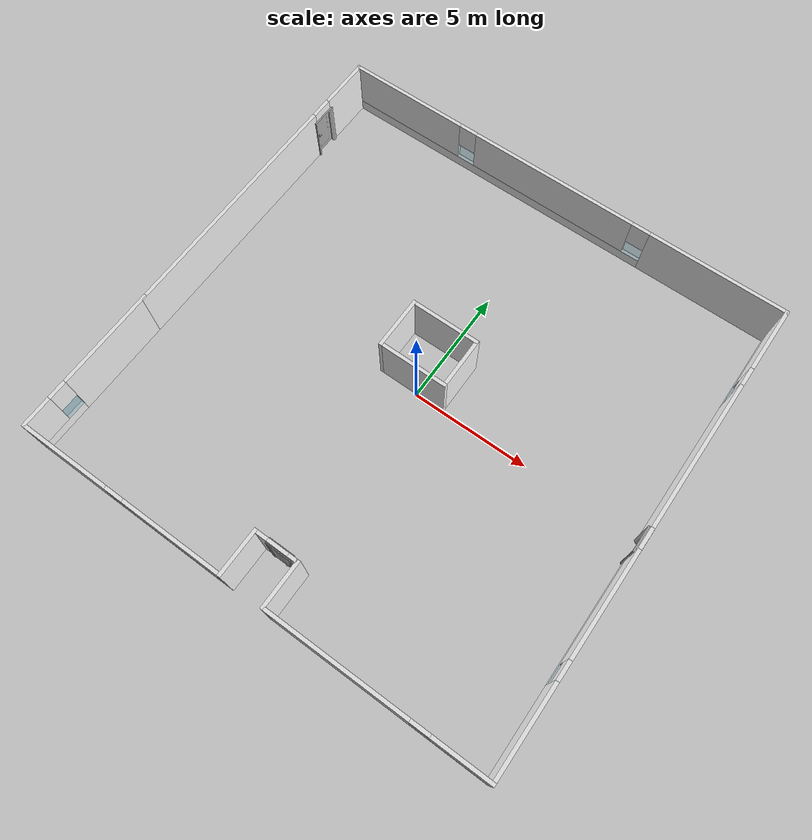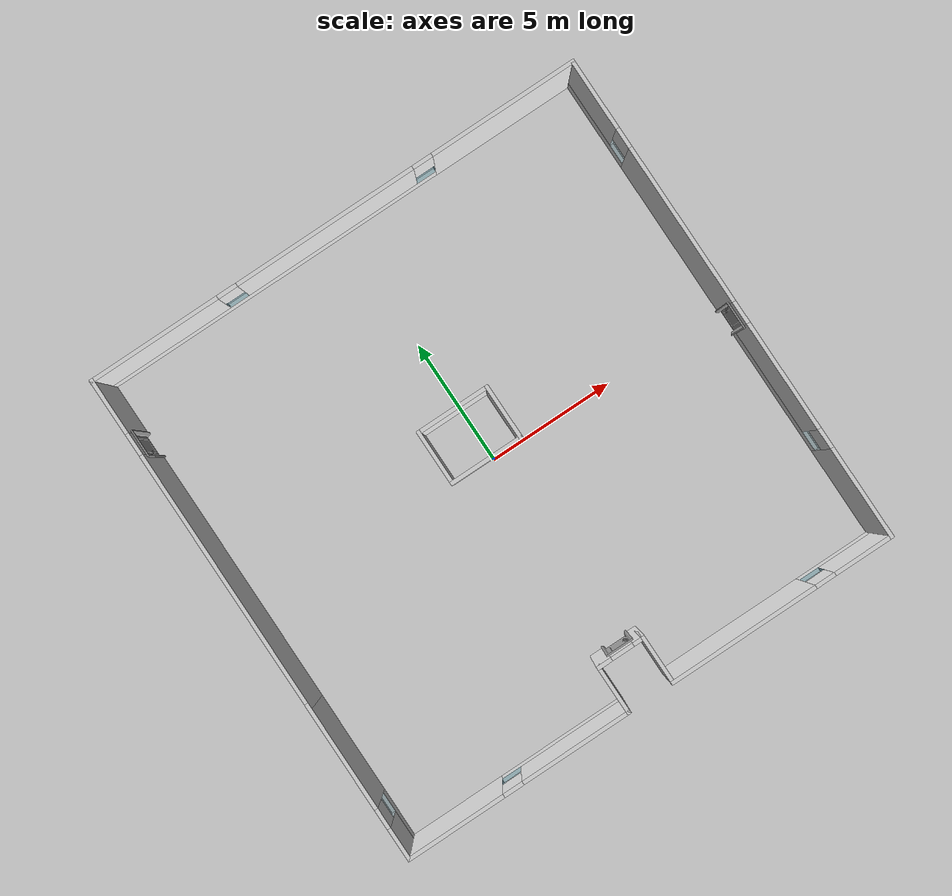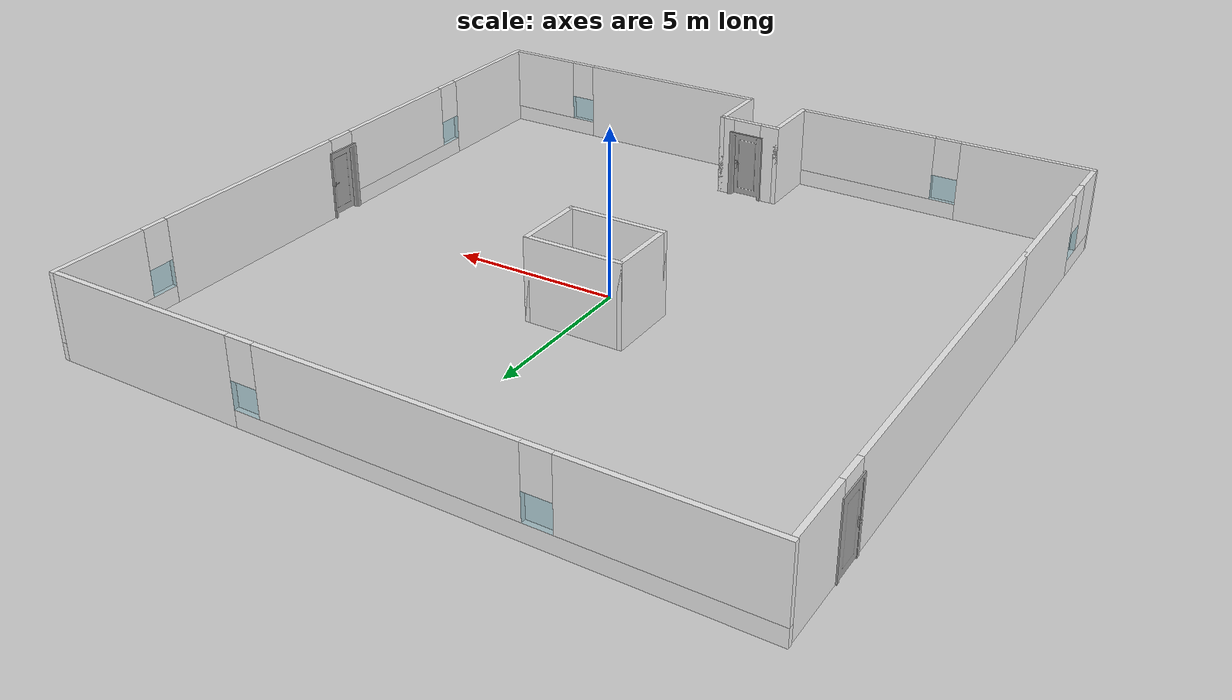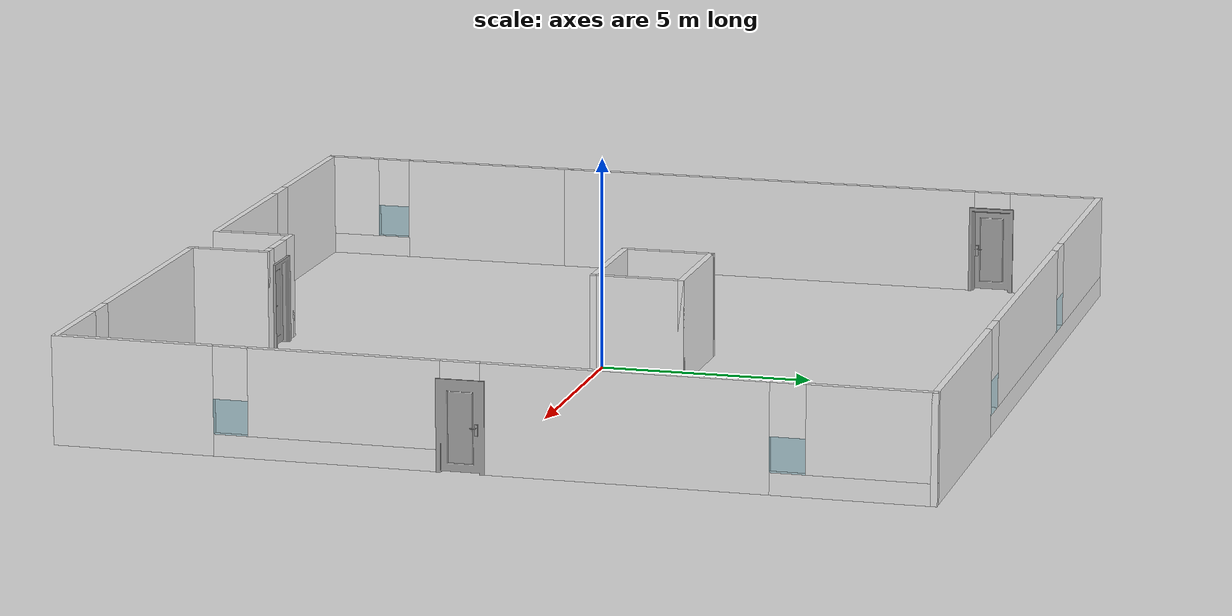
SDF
<?xml version='1.0'?>
<sdf version='1.6'>
  <model name='office_env_w_complete'>
    <pose frame=''>-0.097844 0.056836 0 0 -0 0</pose>
    <link name='Wall_10'>
      <pose frame=''>-5.46873 -9.925 0 0 -0 0</pose>
      <visual name='Wall_10_Visual_0'>
        <pose frame=''>-2.62812 0 1.25 0 -0 0</pose>
        <geometry>
          <box>
            <size>3.99376 0.15 2.5</size>
          </box>
        </geometry>
        	<material>
          <script>
            <uri>model://office_env_w/materials/scripts</uri>
            <uri>model://office_env_w/materials/textures</uri>
            <name>wall_white</name>
          </script>
        </material>
        <meta>
          <layer>0</layer>
        </meta>
      </visual>
      <collision name='Wall_10_Collision_0'>
        <geometry>
          <box>
            <size>3.99376 0.15 2.5</size>
          </box>
        </geometry>
        <pose frame=''>-2.62812 0 1.25 0 -0 0</pose>
      </collision>
      <visual name='Wall_10_Visual_1'>
        <pose frame=''>1.99688 0 0.25 0 -0 0</pose>
        <geometry>
          <box>
            <size>5.25624 0.15 0.5</size>
          </box>
        </geometry>
        	<material>
          <script>
            <uri>model://office_env_w/materials/scripts</uri>
            <uri>model://office_env_w/materials/textures</uri>
            <name>wall_white</name>
          </script>
        </material>
        <meta>
          <layer>0</layer>
        </meta>
      </visual>
      <collision name='Wall_10_Collision_1'>
        <geometry>
          <box>
            <size>5.25624 0.15 0.5</size>
          </box>
        </geometry>
        <pose frame=''>1.99688 0 0.25 0 -0 0</pose>
      </collision>
      <visual name='Wall_10_Visual_2'>
        <pose frame=''>2.39688 0 1.5 0 -0 0</pose>
        <geometry>
          <box>
            <size>4.45624 0.15 2</size>
          </box>
        </geometry>
            	<material>
          <script>
            <uri>model://office_env_w/materials/scripts</uri>
            <uri>model://office_env_w/materials/textures</uri>
            <name>wall_white</name>
          </script>
        </material>
        <meta>
          <layer>0</layer>
        </meta>
      </visual>
      <collision name='Wall_10_Collision_2'>
        <geometry>
          <box>
            <size>4.45624 0.15 2</size>
          </box>
        </geometry>
        <pose frame=''>2.39688 0 1.5 0 -0 0</pose>
      </collision>
      <visual name='Wall_10_Visual_3'>
        <pose frame=''>-0.231239 0 1.9 0 -0 0</pose>
        <geometry>
          <box>
            <size>0.8 0.15 1.2</size>
          </box>
        </geometry>
        	<material>
          <script>
            <uri>model://office_env_w/materials/scripts</uri>
            <uri>model://office_env_w/materials/textures</uri>
            <name>wall_white</name>
          </script>
        </material>
        <meta>
          <layer>0</layer>
        </meta>
      </visual>
      <collision name='Wall_10_Collision_3'>
        <geometry>
          <box>
            <size>0.8 0.15 1.2</size>
          </box>
        </geometry>
        <pose frame=''>-0.231239 0 1.9 0 -0 0</pose>
      </collision>
    </link>

   <include>
	<pose frame=''>-5.699969 -9.925 0 0 0 0</pose>
	<uri>model://window</uri>
   </include>

    <link name='Wall_11'>
      <collision name='Wall_11_Collision'>
        <geometry>
          <box>
            <size>2 0.15 2.5</size>
          </box>
        </geometry>
        <pose frame=''>0 0 1.25 0 -0 0</pose>
      </collision>
      <visual name='Wall_11_Visual'>
        <pose frame=''>0 0 1.25 0 -0 0</pose>
        <geometry>
          <box>
            <size>2 0.15 2.5</size>
          </box>
        </geometry>
        	<material>
          <script>
            <uri>model://office_env_w/materials/scripts</uri>
            <uri>model://office_env_w/materials/textures</uri>
            <name>wall_white</name>
          </script>
        </material>
        <meta>
          <layer>0</layer>
        </meta>
      </visual>
      <pose frame=''>-0.918728 -9 0 0 -0 1.5708</pose>
    </link>
    <link name='Wall_12'>
      <pose frame=''>0.006272 -8.075 0 0 -0 0</pose>
      <visual name='Wall_12_Visual_0'>
        <pose frame=''>-0.695653 0 1.25 0 -0 0</pose>
        <geometry>
          <box>
            <size>0.608694 0.15 2.5</size>
          </box>
        </geometry>
        	<material>
          <script>
            <uri>model://office_env_w/materials/scripts</uri>
            <uri>model://office_env_w/materials/textures</uri>
            <name>wall_white</name>
          </script>
        </material>
        <meta>
          <layer>0</layer>
        </meta>
      </visual>
      <collision name='Wall_12_Collision_0'>
        <geometry>
          <box>
            <size>0.608694 0.15 2.5</size>
          </box>
        </geometry>
        <pose frame=''>-0.695653 0 1.25 0 -0 0</pose>
      </collision>
      <visual name='Wall_12_Visual_1'>
        <pose frame=''>0.754347 0 1.25 0 -0 0</pose>
        <geometry>
          <box>
            <size>0.491306 0.15 2.5</size>
          </box>
        </geometry>
        	<material>
          <script>
            <uri>model://office_env_w/materials/scripts</uri>
            <uri>model://office_env_w/materials/textures</uri>
            <name>wall_white</name>
          </script>
        </material>
        <meta>
          <layer>0</layer>
        </meta>
      </visual>
      <collision name='Wall_12_Collision_1'>
        <geometry>
          <box>
            <size>0.491306 0.15 2.5</size>
          </box>
        </geometry>
        <pose frame=''>0.754347 0 1.25 0 -0 0</pose>
      </collision>
      <visual name='Wall_12_Visual_2'>
        <pose frame=''>0.058694 0 2.25 0 -0 0</pose>
        <geometry>
          <box>
            <size>0.9 0.15 0.5</size>
          </box>
        </geometry>
        	<material>
          <script>
            <uri>model://office_env_w/materials/scripts</uri>
            <uri>model://office_env_w/materials/textures</uri>
            <name>wall_white</name>
          </script>
        </material>
        <meta>
          <layer>0</layer>
        </meta>
      </visual>
      <collision name='Wall_12_Collision_2'>
        <geometry>
          <box>
            <size>0.9 0.15 0.5</size>
          </box>
        </geometry>
        <pose frame=''>0.058694 0 2.25 0 -0 0</pose>
      </collision>
    </link>

 <include>
<pose frame=''>0.064966 -8.062 0 0 -0 0</pose>
	<uri>model://door_3d</uri>
</include>

    <link name='Wall_15'>
      <collision name='Wall_15_Collision'>
        <geometry>
          <box>
            <size>2 0.15 2.5</size>
          </box>
        </geometry>
        <pose frame=''>0 0 1.25 0 -0 0</pose>
      </collision>
      <visual name='Wall_15_Visual'>
        <pose frame=''>0 0 1.25 0 -0 0</pose>
        <geometry>
          <box>
            <size>2 0.15 2.5</size>
          </box>
        </geometry>
        	<material>
          <script>
            <uri>model://office_env_w/materials/scripts</uri>
            <uri>model://office_env_w/materials/textures</uri>
            <name>wall_white</name>
          </script>
        </material>
        <meta>
          <layer>0</layer>
        </meta>
      </visual>
      <pose frame=''>0.931272 -9 0 0 0 -1.5708</pose>
    </link>
    <link name='Wall_16'>
      <pose frame=''>5.48127 -9.925 0 0 -0 0</pose>
      <visual name='Wall_16_Visual_0'>
        <pose frame=''>-1.61303 0 1.25 0 -0 0</pose>
        <geometry>
          <box>
            <size>6.02393 0.15 2.5</size>
          </box>
        </geometry>
        	<material>
          <script>
            <uri>model://office_env_w/materials/scripts</uri>
            <uri>model://office_env_w/materials/textures</uri>
            <name>wall_white</name>
          </script>
        </material>
        <meta>
          <layer>0</layer>
        </meta>
      </visual>
      <collision name='Wall_16_Collision_0'>
        <geometry>
          <box>
            <size>6.02393 0.15 2.5</size>
          </box>
        </geometry>
        <pose frame=''>-1.61303 0 1.25 0 -0 0</pose>
      </collision>
      <visual name='Wall_16_Visual_1'>
        <pose frame=''>3.01197 0 0.25 0 -0 0</pose>
        <geometry>
          <box>
            <size>3.22607 0.15 0.5</size>
          </box>
        </geometry>
        	<material>
          <script>
            <uri>model://office_env_w/materials/scripts</uri>
            <uri>model://office_env_w/materials/textures</uri>
            <name>wall_white</name>
          </script>
        </material>
        <meta>
          <layer>0</layer>
        </meta>
      </visual>
      <collision name='Wall_16_Collision_1'>
        <geometry>
          <box>
            <size>3.22607 0.15 0.5</size>
          </box>
        </geometry>
        <pose frame=''>3.01197 0 0.25 0 -0 0</pose>
      </collision>
      <visual name='Wall_16_Visual_2'>
        <pose frame=''>3.41197 0 1.5 0 -0 0</pose>
        <geometry>
          <box>
            <size>2.42607 0.15 2</size>
          </box>
        </geometry>
        	<material>
          <script>
            <uri>model://office_env_w/materials/scripts</uri>
            <uri>model://office_env_w/materials/textures</uri>
            <name>wall_white</name>
          </script>
        </material>
        <meta>
          <layer>0</layer>
        </meta>
      </visual>
      <collision name='Wall_16_Collision_2'>
        <geometry>
          <box>
            <size>2.42607 0.15 2</size>
          </box>
        </geometry>
        <pose frame=''>3.41197 0 1.5 0 -0 0</pose>
      </collision>
      <visual name='Wall_16_Visual_3'>
        <pose frame=''>1.79893 0 1.9 0 -0 0</pose>
        <geometry>
          <box>
            <size>0.8 0.15 1.2</size>
          </box>
        </geometry>
        	<material>
          <script>
            <uri>model://office_env_w/materials/scripts</uri>
            <uri>model://office_env_w/materials/textures</uri>
            <name>wall_white</name>
          </script>
        </material>
        <meta>
          <layer>0</layer>
        </meta>
      </visual>
      <collision name='Wall_16_Collision_3'>
        <geometry>
          <box>
            <size>0.8 0.15 1.2</size>
          </box>
        </geometry>
        <pose frame=''>1.79893 0 1.9 0 -0 0</pose>
      </collision>
    </link>

  <include>
	<pose frame=''>7.2802 -9.925 0 0 0 0</pose>
	<uri>model://window</uri>
   </include>

    <link name='Wall_17'>
      <pose frame=''>10.0313 0 0 0 -0 1.5708</pose>
      <visual name='Wall_17_Visual_0'>
        <pose frame=''>-8.12184 0 1.25 0 -0 0</pose>
        <geometry>
          <box>
            <size>3.75631 0.15 2.5</size>
          </box>
        </geometry>
        	<material>
          <script>
            <uri>model://office_env_w/materials/scripts</uri>
            <uri>model://office_env_w/materials/textures</uri>
            <name>wall_white</name>
          </script>
        </material>
        <meta>
          <layer>0</layer>
        </meta>
      </visual>
      <collision name='Wall_17_Collision_0'>
        <geometry>
          <box>
            <size>3.75631 0.15 2.5</size>
          </box>
        </geometry>
        <pose frame=''>-8.12184 0 1.25 0 -0 0</pose>
      </collision>
      <visual name='Wall_17_Visual_1'>
        <pose frame=''>3.09096 0 1.25 0 -0 0</pose>
        <geometry>
          <box>
            <size>6.45362 0.15 2.5</size>
          </box>
        </geometry>
        	<material>
          <script>
            <uri>model://office_env_w/materials/scripts</uri>
            <uri>model://office_env_w/materials/textures</uri>
            <name>wall_white</name>
          </script>
        </material>
        <meta>
          <layer>0</layer>
        </meta>
      </visual>
      <collision name='Wall_17_Collision_1'>
        <geometry>
          <box>
            <size>6.45362 0.15 2.5</size>
          </box>
        </geometry>
        <pose frame=''>3.09096 0 1.25 0 -0 0</pose>
      </collision>
      <visual name='Wall_17_Visual_2'>
        <pose frame=''>-3.63977 0 0.25 0 -0 0</pose>
        <geometry>
          <box>
            <size>5.20784 0.15 0.5</size>
          </box>
        </geometry>
        	<material>
          <script>
            <uri>model://office_env_w/materials/scripts</uri>
            <uri>model://office_env_w/materials/textures</uri>
            <name>wall_white</name>
          </script>
        </material>
        <meta>
          <layer>0</layer>
        </meta>
      </visual>
      <collision name='Wall_17_Collision_2'>
        <geometry>
          <box>
            <size>5.20784 0.15 0.5</size>
          </box>
        </geometry>
        <pose frame=''>-3.63977 0 0.25 0 -0 0</pose>
      </collision>
      <visual name='Wall_17_Visual_3'>
        <pose frame=''>8.15888 0 0.25 0 -0 0</pose>
        <geometry>
          <box>
            <size>3.68223 0.15 0.5</size>
          </box>
        </geometry>
        	<material>
          <script>
            <uri>model://office_env_w/materials/scripts</uri>
            <uri>model://office_env_w/materials/textures</uri>
            <name>wall_white</name>
          </script>
        </material>
        <meta>
          <layer>0</layer>
        </meta>
      </visual>
      <collision name='Wall_17_Collision_3'>
        <geometry>
          <box>
            <size>3.68223 0.15 0.5</size>
          </box>
        </geometry>
        <pose frame=''>8.15888 0 0.25 0 -0 0</pose>
      </collision>
      <visual name='Wall_17_Visual_4'>
        <pose frame=''>-3.23977 0 1.5 0 -0 0</pose>
        <geometry>
          <box>
            <size>4.40784 0.15 2</size>
          </box>
        </geometry>
        	<material>
          <script>
            <uri>model://office_env_w/materials/scripts</uri>
            <uri>model://office_env_w/materials/textures</uri>
            <name>wall_white</name>
          </script>
        </material>
        <meta>
          <layer>0</layer>
        </meta>
      </visual>
      <collision name='Wall_17_Collision_4'>
        <geometry>
          <box>
            <size>4.40784 0.15 2</size>
          </box>
        </geometry>
        <pose frame=''>-3.23977 0 1.5 0 -0 0</pose>
      </collision>
      <visual name='Wall_17_Visual_5'>
        <pose frame=''>-3.23977 0 1.5 0 -0 0</pose>
        <geometry>
          <box>
            <size>4.40784 0.15 2</size>
          </box>
        </geometry>
        	<material>
          <script>
            <uri>model://office_env_w/materials/scripts</uri>
            <uri>model://office_env_w/materials/textures</uri>
            <name>wall_white</name>
          </script>
        </material>
        <meta>
          <layer>0</layer>
        </meta>
      </visual>
      <collision name='Wall_17_Collision_5'>
        <geometry>
          <box>
            <size>4.40784 0.15 2</size>
          </box>
        </geometry>
        <pose frame=''>-3.23977 0 1.5 0 -0 0</pose>
      </collision>
      <visual name='Wall_17_Visual_6'>
        <pose frame=''>8.55889 0 1.5 0 -0 0</pose>
        <geometry>
          <box>
            <size>2.88223 0.15 2</size>
          </box>
        </geometry>
        	<material>
          <script>
            <uri>model://office_env_w/materials/scripts</uri>
            <uri>model://office_env_w/materials/textures</uri>
            <name>wall_white</name>
          </script>
        </material>
        <meta>
          <layer>0</layer>
        </meta>
      </visual>
      <collision name='Wall_17_Collision_6'>
        <geometry>
          <box>
            <size>2.88223 0.15 2</size>
          </box>
        </geometry>
        <pose frame=''>8.55889 0 1.5 0 -0 0</pose>
      </collision>
      <visual name='Wall_17_Visual_7'>
        <pose frame=''>-5.84369 0 1.9 0 -0 0</pose>
        <geometry>
          <box>
            <size>0.8 0.15 1.2</size>
          </box>
        </geometry>
        	<material>
          <script>
            <uri>model://office_env_w/materials/scripts</uri>
            <uri>model://office_env_w/materials/textures</uri>
            <name>wall_white</name>
          </script>
        </material>
        <meta>
          <layer>0</layer>
        </meta>
      </visual>
      <collision name='Wall_17_Collision_7'>
        <geometry>
          <box>
            <size>0.8 0.15 1.2</size>
          </box>
        </geometry>
        <pose frame=''>-5.84369 0 1.9 0 -0 0</pose>
      </collision>
      <visual name='Wall_17_Visual_8'>
        <pose frame=''>6.71777 0 1.9 0 -0 0</pose>
        <geometry>
          <box>
            <size>0.8 0.15 1.2</size>
          </box>
        </geometry>
         	<material>
          <script>
            <uri>model://office_env_w/materials/scripts</uri>
            <uri>model://office_env_w/materials/textures</uri>
            <name>wall_white</name>
          </script>
        </material>
        <meta>
          <layer>0</layer>
        </meta>
      </visual>
      <collision name='Wall_17_Collision_8'>
        <geometry>
          <box>
            <size>0.8 0.15 1.2</size>
          </box>
        </geometry>
        <pose frame=''>6.71777 0 1.9 0 -0 0</pose>
      </collision>
      <visual name='Wall_17_Visual_9'>
        <pose frame=''>-0.585848 0 2.25 0 -0 0</pose>
        <geometry>
          <box>
            <size>0.9 0.15 0.5</size>
          </box>
        </geometry>
        	<material>
          <script>
            <uri>model://office_env_w/materials/scripts</uri>
            <uri>model://office_env_w/materials/textures</uri>
            <name>wall_white</name>
          </script>
        </material>
        <meta>
          <layer>0</layer>
        </meta>
      </visual>
      <collision name='Wall_17_Collision_9'>
        <geometry>
          <box>
            <size>0.9 0.15 0.5</size>
          </box>
        </geometry>
        <pose frame=''>-0.585848 0 2.25 0 -0 0</pose>
      </collision>
      <visual name='Wall_17_Visual_10'>
        <pose frame=''>-0.585848 0 2.25 0 -0 0</pose>
        <geometry>
          <box>
            <size>0.9 0.15 0.5</size>
          </box>
        </geometry>
        	<material>
          <script>
            <uri>model://office_env_w/materials/scripts</uri>
            <uri>model://office_env_w/materials/textures</uri>
            <name>wall_white</name>
          </script>
        </material>
        <meta>
          <layer>0</layer>
        </meta>
      </visual>
      <collision name='Wall_17_Collision_10'>
        <geometry>
          <box>
            <size>0.9 0.15 0.5</size>
          </box>
        </geometry>
        <pose frame=''>-0.585848 0 2.25 0 -0 0</pose>
      </collision>
    </link>

   <include>
	<pose frame=''>10.018000 -0.585848 0 0 -0 1.5708</pose>
	<uri>model://door_3d</uri>
  </include>

 <include>
	<pose frame=''>10.031300 -5.84369 0 0 -0 1.5708</pose>
	<uri>model://window</uri>
  </include>

 <include>
	<pose frame=''>10.031300 6.71777 0 0 -0 1.5708</pose>
	<uri>model://window</uri>
  </include>

    <link name='Wall_19'>
      <pose frame=''>-0 9.925 0 0 -0 3.14159</pose>
      <visual name='Wall_19_Visual_0'>
        <pose frame=''>-7.12533 0 1.25 0 -0 0</pose>
        <geometry>
          <box>
            <size>5.96188 0.15 2.5</size>
          </box>
        </geometry>
        	<material>
          <script>
            <uri>model://office_env_w/materials/scripts</uri>
            <uri>model://office_env_w/materials/textures</uri>
            <name>wall_white</name>
          </script>
        </material>
        <meta>
          <layer>0</layer>
        </meta>
      </visual>
      <collision name='Wall_19_Collision_0'>
        <geometry>
          <box>
            <size>5.96188 0.15 2.5</size>
          </box>
        </geometry>
        <pose frame=''>-7.12533 0 1.25 0 -0 0</pose>
      </collision>
      <visual name='Wall_19_Visual_1'>
        <pose frame=''>2.98094 0 0.25 0 -0 0</pose>
        <geometry>
          <box>
            <size>14.2507 0.15 0.5</size>
          </box>
        </geometry>
        	<material>
          <script>
            <uri>model://office_env_w/materials/scripts</uri>
            <uri>model://office_env_w/materials/textures</uri>
            <name>wall_white</name>
          </script>
        </material>
        <meta>
          <layer>0</layer>
        </meta>
      </visual>
      <collision name='Wall_19_Collision_1'>
        <geometry>
          <box>
            <size>14.2507 0.15 0.5</size>
          </box>
        </geometry>
        <pose frame=''>2.98094 0 0.25 0 -0 0</pose>
      </collision>
      <visual name='Wall_19_Visual_2'>
        <pose frame=''>0.326454 0 1.5 0 -0 0</pose>
        <geometry>
          <box>
            <size>7.34169 0.15 2</size>
          </box>
        </geometry>
        	<material>
          <script>
            <uri>model://office_env_w/materials/scripts</uri>
            <uri>model://office_env_w/materials/textures</uri>
            <name>wall_white</name>
          </script>
        </material>
        <meta>
          <layer>0</layer>
        </meta>
      </visual>
      <collision name='Wall_19_Collision_2'>
        <geometry>
          <box>
            <size>7.34169 0.15 2</size>
          </box>
        </geometry>
        <pose frame=''>0.326454 0 1.5 0 -0 0</pose>
      </collision>
      <visual name='Wall_19_Visual_3'>
        <pose frame=''>7.45179 0 1.5 0 -0 0</pose>
        <geometry>
          <box>
            <size>5.30898 0.15 2</size>
          </box>
        </geometry>
        	<material>
          <script>
            <uri>model://office_env_w/materials/scripts</uri>
            <uri>model://office_env_w/materials/textures</uri>
            <name>wall_white</name>
          </script>
        </material>
        <meta>
          <layer>0</layer>
        </meta>
      </visual>
      <collision name='Wall_19_Collision_3'>
        <geometry>
          <box>
            <size>5.30898 0.15 2</size>
          </box>
        </geometry>
        <pose frame=''>7.45179 0 1.5 0 -0 0</pose>
      </collision>
      <visual name='Wall_19_Visual_4'>
        <pose frame=''>-3.74439 0 1.9 0 -0 0</pose>
        <geometry>
          <box>
            <size>0.8 0.15 1.2</size>
          </box>
        </geometry>
             	<material>
          <script>
            <uri>model://office_env_w/materials/scripts</uri>
            <uri>model://office_env_w/materials/textures</uri>
            <name>wall_white</name>
          </script>
        </material>
        <meta>
          <layer>0</layer>
        </meta>
      </visual>
      <collision name='Wall_19_Collision_4'>
        <geometry>
          <box>
            <size>0.8 0.15 1.2</size>
          </box>
        </geometry>
        <pose frame=''>-3.74439 0 1.9 0 -0 0</pose>
      </collision>
      <visual name='Wall_19_Visual_5'>
        <pose frame=''>4.3973 0 1.9 0 -0 0</pose>
        <geometry>
          <box>
            <size>0.8 0.15 1.2</size>
          </box>
        </geometry>
        	<material>
          <script>
            <uri>model://office_env_w/materials/scripts</uri>
            <uri>model://office_env_w/materials/textures</uri>
            <name>wall_white</name>
          </script>
        </material>
        <meta>
          <layer>0</layer>
        </meta>
      </visual>
      <collision name='Wall_19_Collision_5'>
        <geometry>
          <box>
            <size>0.8 0.15 1.2</size>
          </box>
        </geometry>
        <pose frame=''>4.3973 0 1.9 0 -0 0</pose>
      </collision>
    </link>

 <include>
	<pose frame=''>3.744390 9.925 0 0 0 3.141591</pose>
	<uri>model://window</uri>
  </include>

 <include>
	<pose frame=''>-4.3973 9.925 0 0 0 3.141591</pose>
	<uri>model://window</uri>
  </include>

    <link name='Wall_2'>
      <pose frame=''>-10.0187 -6.75 0 0 0 -1.5708</pose>
      <visual name='Wall_2_Visual_0'>
        <pose frame=''>-1.06854 0 1.25 0 -0 0</pose>
        <geometry>
          <box>
            <size>4.36293 0.15 2.5</size>
          </box>
        </geometry>
        	<material>
          <script>
            <uri>model://office_env_w/materials/scripts</uri>
            <uri>model://office_env_w/materials/textures</uri>
            <name>wall_white</name>
          </script>
        </material>
        <meta>
          <layer>0</layer>
        </meta>
      </visual>
      <collision name='Wall_2_Collision_0'>
        <geometry>
          <box>
            <size>4.36293 0.15 2.5</size>
          </box>
        </geometry>
        <pose frame=''>-1.06854 0 1.25 0 -0 0</pose>
      </collision>
      <visual name='Wall_2_Visual_1'>
        <pose frame=''>2.18147 0 0.25 0 -0 0</pose>
        <geometry>
          <box>
            <size>2.13707 0.15 0.5</size>
          </box>
        </geometry>
        	<material>
          <script>
            <uri>model://office_env_w/materials/scripts</uri>
            <uri>model://office_env_w/materials/textures</uri>
            <name>wall_white</name>
          </script>
        </material>
        <meta>
          <layer>0</layer>
        </meta>
      </visual>
      <collision name='Wall_2_Collision_1'>
        <geometry>
          <box>
            <size>2.13707 0.15 0.5</size>
          </box>
        </geometry>
        <pose frame=''>2.18147 0 0.25 0 -0 0</pose>
      </collision>
      <visual name='Wall_2_Visual_2'>
        <pose frame=''>2.58147 0 1.5 0 -0 0</pose>
        <geometry>
          <box>
            <size>1.33707 0.15 2</size>
          </box>
        </geometry>
        	<material>
          <script>
            <uri>model://office_env_w/materials/scripts</uri>
            <uri>model://office_env_w/materials/textures</uri>
            <name>wall_white</name>
          </script>
        </material>
        <meta>
          <layer>0</layer>
        </meta>
      </visual>
      <collision name='Wall_2_Collision_2'>
        <geometry>
          <box>
            <size>1.33707 0.15 2</size>
          </box>
        </geometry>
        <pose frame=''>2.58147 0 1.5 0 -0 0</pose>
      </collision>
      <visual name='Wall_2_Visual_3'>
        <pose frame=''>1.51293 0 1.9 0 -0 0</pose>
        <geometry>
          <box>
            <size>0.8 0.15 1.2</size>
          </box>
        </geometry>
        	<material>
          <script>
            <uri>model://office_env_w/materials/scripts</uri>
            <uri>model://office_env_w/materials/textures</uri>
            <name>wall_white</name>
          </script>
        </material>
        <meta>
          <layer>0</layer>
        </meta>
      </visual>
      <collision name='Wall_2_Collision_3'>
        <geometry>
          <box>
            <size>0.8 0.15 1.2</size>
          </box>
        </geometry>
        <pose frame=''>1.51293 0 1.9 0 -0 0</pose>
      </collision>
    </link>

 <include>
	<pose frame=''>-10.0187 -8.26293 0 0 0 -1.57</pose>
	<uri>model://window</uri>
  </include>

    <link name='Wall_20'>
      <pose frame=''>-10.018 3.125 0 0 0 -1.5708</pose>
      <visual name='Wall_20_Visual_0'>
        <pose frame=''>-5.73803 0 1.25 0 -0 0</pose>
        <geometry>
          <box>
            <size>2.27394 0.15 2.5</size>
          </box>
        </geometry>
        	<material>
          <script>
            <uri>model://office_env_w/materials/scripts</uri>
            <uri>model://office_env_w/materials/textures</uri>
            <name>wall_white</name>
          </script>
        </material>
        <meta>
          <layer>0</layer>
        </meta>
      </visual>
      <collision name='Wall_20_Collision_0'>
        <geometry>
          <box>
            <size>2.27394 0.15 2.5</size>
          </box>
        </geometry>
        <pose frame=''>-5.73803 0 1.25 0 -0 0</pose>
      </collision>
      <visual name='Wall_20_Visual_1'>
        <pose frame=''>1.58697 0 1.25 0 -0 0</pose>
        <geometry>
          <box>
            <size>10.5761 0.15 2.5</size>
          </box>
        </geometry>
        	<material>
          <script>
            <uri>model://office_env_w/materials/scripts</uri>
            <uri>model://office_env_w/materials/textures</uri>
            <name>wall_white</name>
          </script>
        </material>
        <meta>
          <layer>0</layer>
        </meta>
      </visual>
      <collision name='Wall_20_Collision_1'>
        <geometry>
          <box>
            <size>10.5761 0.15 2.5</size>
          </box>
        </geometry>
        <pose frame=''>1.58697 0 1.25 0 -0 0</pose>
      </collision>
      <visual name='Wall_20_Visual_2'>
        <pose frame=''>-4.15106 0 2.25 0 -0 0</pose>
        <geometry>
          <box>
            <size>0.9 0.15 0.5</size>
          </box>
        </geometry>
        	<material>
          <script>
            <uri>model://office_env_w/materials/scripts</uri>
            <uri>model://office_env_w/materials/textures</uri>
            <name>wall_white</name>
          </script>
        </material>
        <meta>
          <layer>0</layer>
        </meta>
      </visual>
      <collision name='Wall_20_Collision_2'>
        <geometry>
          <box>
            <size>0.9 0.15 0.5</size>
          </box>
        </geometry>
        <pose frame=''>-4.15106 0 2.25 0 -0 0</pose>
      </collision>
    </link>

   <include>
	<pose frame=''>-10.00500 7.27606 0 0 -0 -1.5708</pose>
	<uri>model://door_3d</uri>
  </include>

    <link name='Wall_22'>
      <collision name='Wall_22_Collision'>
        <geometry>
          <box>
            <size>3 0.15 2.5</size>
          </box>
        </geometry>
        <pose frame=''>0 0 1.25 0 -0 0</pose>
      </collision>
      <visual name='Wall_22_Visual'>
        <pose frame=''>0 0 1.25 0 -0 0</pose>
        <geometry>
          <box>
            <size>3 0.15 2.5</size>
          </box>
        </geometry>
        	<material>
          <script>
            <uri>model://office_env_w/materials/scripts</uri>
            <uri>model://office_env_w/materials/textures</uri>
            <name>wall_white</name>
          </script>
        </material>
        <meta>
          <layer>0</layer>
        </meta>
      </visual>
      <pose frame=''>-0.163956 0.04737 0 0 -0 3.14159</pose>
    </link>
    <link name='Wall_23'>
      <collision name='Wall_23_Collision'>
        <geometry>
          <box>
            <size>2.25 0.15 2.5</size>
          </box>
        </geometry>
        <pose frame=''>0 0 1.25 0 -0 0</pose>
      </collision>
      <visual name='Wall_23_Visual'>
        <pose frame=''>0 0 1.25 0 -0 0</pose>
        <geometry>
          <box>
            <size>2.25 0.15 2.5</size>
          </box>
        </geometry>
        	<material>
          <script>
            <uri>model://office_env_w/materials/scripts</uri>
            <uri>model://office_env_w/materials/textures</uri>
            <name>wall_white</name>
          </script>
        </material>
        <meta>
          <layer>0</layer>
        </meta>
      </visual>
      <pose frame=''>-1.58896 1.09737 0 0 -0 1.5708</pose>
    </link>
    <link name='Wall_24'>
      <collision name='Wall_24_Collision'>
        <geometry>
          <box>
            <size>3 0.15 2.5</size>
          </box>
        </geometry>
        <pose frame=''>0 0 1.25 0 -0 0</pose>
      </collision>
      <visual name='Wall_24_Visual'>
        <pose frame=''>0 0 1.25 0 -0 0</pose>
        <geometry>
          <box>
            <size>3 0.15 2.5</size>
          </box>
        </geometry>
        	<material>
          <script>
            <uri>model://office_env_w/materials/scripts</uri>
            <uri>model://office_env_w/materials/textures</uri>
            <name>wall_white</name>
          </script>
        </material>
        <meta>
          <layer>0</layer>
        </meta>
      </visual>
      <pose frame=''>-0.163956 2.14737 0 0 -0 0</pose>
    </link>
    <link name='Wall_25'>
      <collision name='Wall_25_Collision'>
        <geometry>
          <box>
            <size>2.25 0.15 2.5</size>
          </box>
        </geometry>
        <pose frame=''>0 0 1.25 0 -0 0</pose>
      </collision>
      <visual name='Wall_25_Visual'>
        <pose frame=''>0 0 1.25 0 -0 0</pose>
        <geometry>
          <box>
            <size>2.25 0.15 2.5</size>
          </box>
        </geometry>
        	<material>
          <script>
            <uri>model://office_env_w/materials/scripts</uri>
            <uri>model://office_env_w/materials/textures</uri>
            <name>wall_white</name>
          </script>
        </material>
        <meta>
          <layer>0</layer>
        </meta>
      </visual>
      <pose frame=''>1.26104 1.09737 0 0 0 -1.5708</pose>
    </link>
    <static>1</static>
  </model>
</sdf>

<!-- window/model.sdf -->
<sdf version='1.6'>
  <model name='window'>
    <link name='link_2'>
         <visual name='visual'>
        <pose frame=''>0 0 0.9 0 -0 0</pose>
        <geometry>
          <box>
            <size>0.8 0.15 0.8</size>
          </box>
        </geometry>
         <material>
          <lighting>1</lighting>
             <ambient>0.1 0.5 0.6 1</ambient>
          <diffuse>0.1 0.5 0.6 1</diffuse>
          <specular>0.01 0.01 0.01 1</specular>
          <emissive>0 0 0 1</emissive>
        </material>
        <cast_shadows>1</cast_shadows>
        <transparency>0.7</transparency>
      </visual>
      <collision name='collision'>
        <laser_retro>0</laser_retro>
        <max_contacts>10</max_contacts>
        <pose frame=''>0 0 0.9 0 -0 0</pose>
        <geometry>
          <box>
            <size>0.8 0.15 0.8</size>
          </box>
        </geometry>

      </collision>
    </link>
    <static>1</static>
    <allow_auto_disable>1</allow_auto_disable>
  </model>
</sdf>

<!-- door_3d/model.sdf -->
<sdf version='1.6'>
  <model name='door_3d'>
    <link name='link_1'>
        <visual name='visual'>
        <pose frame=''>0 0 0 0 -0 0</pose>
        <geometry>
          <mesh>
            <uri>model://door_3d/meshes/door_v2_door.dae</uri>
            <scale>1 1 1</scale>
          </mesh>
        </geometry>
       	<material>
          <script>
            <uri>model://door_3d/materials/scripts</uri>
            <uri>model://door_3d/materials/textures</uri>
            <name>door_3d</name>
          </script>
        </material>
        <cast_shadows>1</cast_shadows>
        <transparency>0</transparency>
      </visual>
      <collision name='collision'>
        <laser_retro>0</laser_retro>
        <max_contacts>10</max_contacts>
        <pose frame=''>0 0 0 0 -0 0</pose>
        <geometry>
          <mesh>
            <uri>model://door_3d/meshes/door_v2_door.dae</uri>
            <scale>1 1 1</scale>
          </mesh>
        </geometry>
       </collision>
    </link>
    <link name='link_2'>
         <visual name='visual'>
        <pose frame=''>0 0 0 0 -0 0</pose>
        <geometry>
          <mesh>
            <uri>model://door_3d/meshes/door_v2_handle.dae</uri>
            <scale>1 1 1</scale>
          </mesh>
        </geometry>
           	<material>
          <script>
            <uri>model://door_3d/materials/scripts</uri>
            <uri>model://door_3d/materials/textures</uri>
            <name>door_handle</name>
          </script>
        </material>
        <cast_shadows>1</cast_shadows>
        <transparency>0</transparency>
      </visual>
      <collision name='collision'>
        <laser_retro>0</laser_retro>
        <max_contacts>10</max_contacts>
        <pose frame=''>0 0 0 0 -0 0</pose>
        <geometry>
          <mesh>
            <uri>model://door_3d/meshes/door_v2_handle.dae</uri>
            <scale>1 1 1</scale>
          </mesh>
        </geometry>
        </collision>
    </link>
    <static>1</static>
    <allow_auto_disable>1</allow_auto_disable>
  </model>
</sdf>
